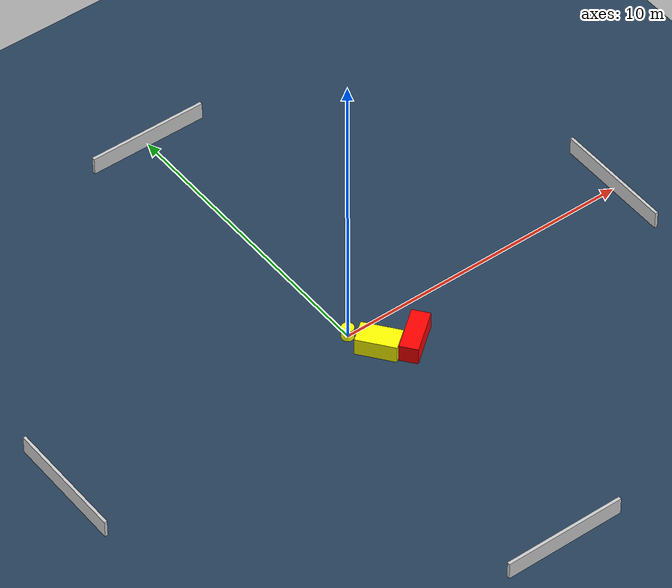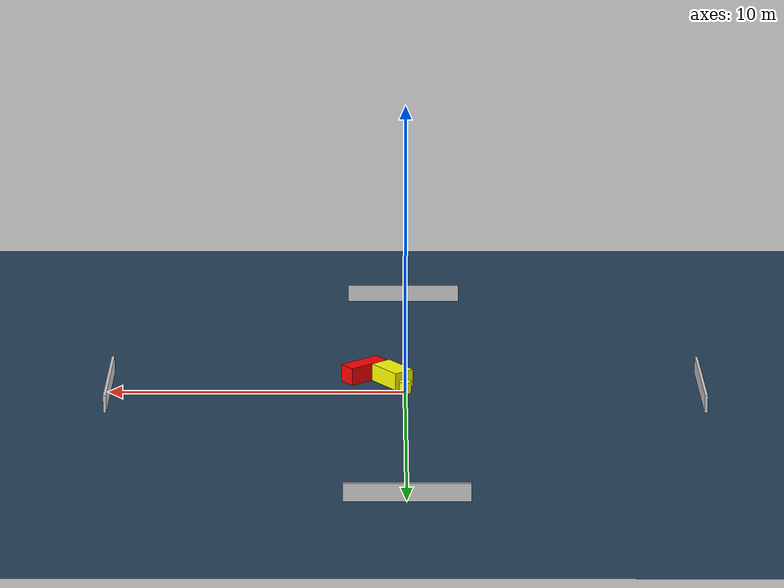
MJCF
<?xml version="1.0" ?>
<mujoco model="generated_environment">
  <option timestep="0.01" integrator="RK4" cone="elliptic"/>
  <default>
    <geom density="1"/>
  </default>
  <asset>
    <texture builtin="gradient" height="3072" name="skybox" rgb1="0.3 0.5 0.7" rgb2="0 0 0" type="skybox" width="512"/>
    <texture builtin="checker" height="300" name="groundplane" rgb1="0.2 0.3 0.4" rgb2="0.1 0.2 0.3" type="2d" width="300"/>
    <material name="groundplane" reflectance="0.2" texrepeat="5 5" texture="groundplane"/>
  </asset>
  <worldbody>
    <light dir="0 0 -1" directional="true" pos="0 0 1.5"/>
    <geom condim="3" friction="0.5 0.005 0.001" material="groundplane" name="floor" pos="0 0 0" size="0 0 0.05" type="plane"/>
    <body name="walls">
      <geom name="wall_1" condim="4" pos="-10.0 0.0 0.3" rgba="0.800000011920929 0.800000011920929 0.800000011920929 1.0" size="0.05 2.0 0.3" type="box"/>
      <geom name="wall_2" condim="4" pos="10.0 0.0 0.3" rgba="0.800000011920929 0.800000011920929 0.800000011920929 1.0" size="0.05 2.0 0.3" type="box"/>
      <geom name="wall_3" condim="4" pos="0.0 -10.0 0.3" rgba="0.800000011920929 0.800000011920929 0.800000011920929 1.0" size="2.0 0.05 0.3" type="box"/>
      <geom name="wall_4" condim="4" pos="0.0 10.0 0.3" rgba="0.800000011920929 0.800000011920929 0.800000011920929 1.0" size="2.0 0.05 0.3" type="box"/>
    </body>
    <body name="robot">
      <joint name="joint_x" type="slide" pos="0 0 0" axis="1 0 0"/>
      <joint name="joint_y" type="slide" pos="0 0 0" axis="0 1 0"/>
      <geom name="robot" type="cylinder" pos="0.0 0.0 0.2" size="0.2 0.2 0.0" mass="5.0" friction="1.0 0.005 0.0001" condim="4" rgba="1.0 1.0 0.0 1.0"/>
    </body>
    <body name="obstacle_1_movable">
      <geom name="obstacle_1_movable" condim="4" pos="0.42006091377116916 -0.9419509057147208 0.3" euler="0 0 127.68989170795534" friction="0.0 0.005 0.001" rgba="1.0 1.0 0.0 1.0" size="0.6456227958307583 0.3726702923619929 0.3" type="box" mass="0.1"/>
      <joint type="free"/>
    </body>
    <body name="obstacle_2_static">
      <geom name="obstacle_2_static" condim="4" pos="1.3823208546799655 -1.406438629390899 0.3" euler="0 0 128.28738743721865" friction="0.0 0.005 0.001" rgba="1.0 0.0 0.0 1.0" size="0.29563607579528994 0.7568287723204967 0.3" type="box"/>
    </body>
  </worldbody>
  <actuator>
    <motor name="actuator_x" joint="joint_x" gear="1" ctrlrange="-1 1"/>
    <motor name="actuator_y" joint="joint_y" gear="1" ctrlrange="-1 1"/>
  </actuator>
</mujoco>
